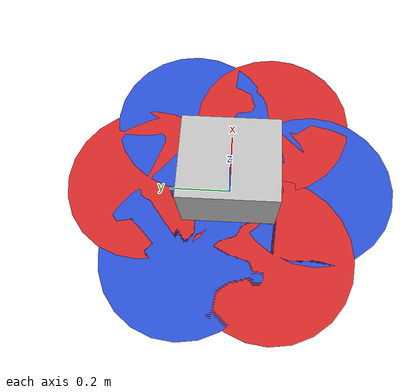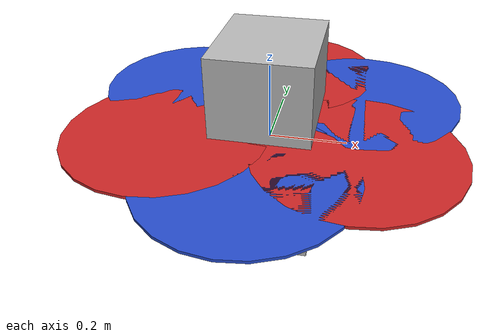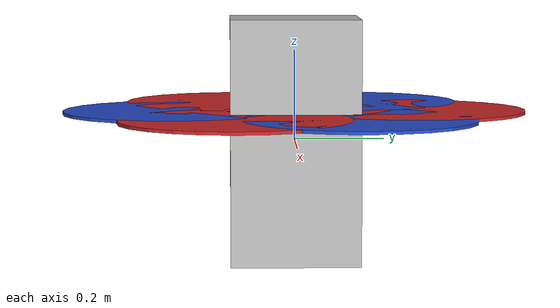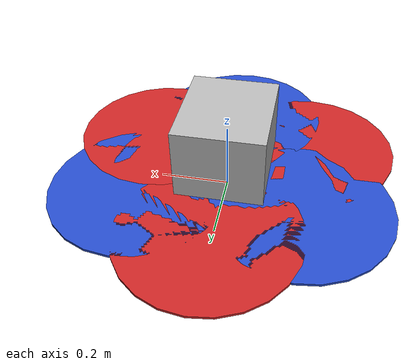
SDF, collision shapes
<?xml version="1.0"?>
<sdf version="1.8">
  <model name="S550">
    <!-- Initial pose -->
    <pose>0 0 0 0 0 0</pose>

    <!-- Body link -->
    <link name="base_link">
      <pose>0 0 0 0 0 0</pose>
      <inertial>
        <!-- Center of mass -->
        <pose>-0.006 0.0 0.0 0 0 0</pose>
        <mass>3.066</mass>
        <inertia>
          <ixx>0.05108461936</ixx>
          <ixy>-0.00002918115</ixy>
          <ixz>0.00004004074</ixz>
          <iyy>0.05056371267</iyy>
          <iyz>0.00122686913</iyz>
          <izz>0.07383113093</izz>
        </inertia>
      </inertial>
			<collision name="base_link_collision">
				<pose>0 0 0 0 0 0</pose>
				<geometry>
					<box>
						<size>0.250 0.28845 0.545</size>
					</box>
				</geometry>
				<surface>
					<contact>
						<ode>
							<kp>1e7</kp>
							<kd>1.0</kd>
							<max_vel>0.01</max_vel>
							<min_depth>0.003</min_depth>
						</ode>
					</contact>
					<friction>
						<ode>
							<mu>1.2</mu>
							<mu2>1.2</mu2>
							<fdir1>0 0 0</fdir1>
							<slip1>0.0</slip1>
							<slip2>0.0</slip2>
						</ode>
					</friction>
				</surface>
			</collision>
			<visual name="base_link_visual">
				<pose>0 0 0 0 0 0</pose>
				<geometry>
					<mesh>
						<scale>1 1 1</scale>
						<uri>package://drone_description/models/S550/meshes/S550.dae</uri>
					</mesh>
				</geometry>
			</visual>
		</link>

    <!-- IMU link (52mm above base_link) -->
    <link name="imu_link">
      <pose relative_to="base_link">0 0 0.052 0 0 0</pose>
      <inertial>
        <mass>0.001</mass>
        <inertia>
          <ixx>1e-9</ixx>
          <ixy>0</ixy>
          <ixz>0</ixz>
          <iyy>1e-9</iyy>
          <iyz>0</iyz>
          <izz>1e-9</izz>
        </inertia>
      </inertial>
      <sensor name="imu_sensor" type="imu">
        <always_on>true</always_on>
        <update_rate>200</update_rate>
        <imu>
          <angular_velocity>
            <x>
              <noise type="gaussian">
                <mean>0.0</mean>
                <stddev>7.727e-4</stddev>
                <bias_mean>0.0</bias_mean>
                <bias_stddev>0.0</bias_stddev>
                <dynamic_bias_stddev>1.5e-4</dynamic_bias_stddev>
                <bias_correlation_time>3000.0</bias_correlation_time>
              </noise>
            </x>
            <y>
              <noise type="gaussian">
                <mean>0.0</mean>
                <stddev>7.727e-4</stddev>
                <bias_mean>0.0</bias_mean>
                <bias_stddev>0.0</bias_stddev>
                <dynamic_bias_stddev>1.5e-4</dynamic_bias_stddev>
                <bias_correlation_time>3000.0</bias_correlation_time>
              </noise>
            </y>
            <z>
              <noise type="gaussian">
                <mean>0.0</mean>
                <stddev>7.727e-4</stddev>
                <bias_mean>0.0</bias_mean>
                <bias_stddev>0.0</bias_stddev>
                <dynamic_bias_stddev>1.5e-4</dynamic_bias_stddev>
                <bias_correlation_time>3000.0</bias_correlation_time>
              </noise>
            </z>
          </angular_velocity>
          <linear_acceleration>
            <x>
              <noise type="gaussian">
                <mean>0.0</mean>
                <stddev>1.008e-2</stddev>
                <bias_mean>0.0</bias_mean>
                <bias_stddev>0.0</bias_stddev>
                <dynamic_bias_stddev>8.0e-3</dynamic_bias_stddev>
                <bias_correlation_time>3000.0</bias_correlation_time>
              </noise>
            </x>
            <y>
              <noise type="gaussian">
                <mean>0.0</mean>
                <stddev>1.008e-2</stddev>
                <bias_mean>0.0</bias_mean>
                <bias_stddev>0.0</bias_stddev>
                <dynamic_bias_stddev>8.0e-3</dynamic_bias_stddev>
                <bias_correlation_time>3000.0</bias_correlation_time>
              </noise>
            </y>
            <z>
              <noise type="gaussian">
                <mean>0.0</mean>
                <stddev>1.086e-2</stddev>
                <bias_mean>0.0</bias_mean>
                <bias_stddev>0.0</bias_stddev>
                <dynamic_bias_stddev>8.0e-3</dynamic_bias_stddev>
                <bias_correlation_time>3000.0</bias_correlation_time>
              </noise>
            </z>
          </linear_acceleration>
        </imu>
        <visualize>false</visualize>
      </sensor>
    </link>

    <joint name="imu_joint" type="fixed">
      <parent>base_link</parent>
      <child>imu_link</child>
    </joint>

    <!-- Camera link -->
    <link name="bottom_screw_frame">
      <pose relative_to="base_link">
        0.046 0 -0.088
        0 0.52359877559 0
      </pose>
      <inertial>
        <pose>0 0 0 0 0 0</pose>
        <mass>1e-10</mass>
        <inertia>
          <ixx>1e-10</ixx>
          <ixy>0</ixy>
          <ixz>0</ixz>
          <iyy>1e-10</iyy>
          <iyz>0</iyz>
          <izz>1e-10</izz>
        </inertia>
      </inertial>
    </link>

    <link name="camera_link">
      <pose relative_to="bottom_screw_frame">
        0 0.0175 0.0125
        0 0 0
      </pose>
      <inertial>
        <pose>0 0 0 0 0 0</pose>
        <mass>1e-10</mass>
        <inertia>
          <ixx>1e-10</ixx>
          <ixy>0</ixy>
          <ixz>0</ixz>
          <iyy>1e-10</iyy>
          <iyz>0</iyz>
          <izz>1e-10</izz>
        </inertia>
      </inertial>
      <collision name="camera_collision">
        <pose>0 0 0
              0 0 0
        </pose>
        <geometry>
          <box>
            <size>0.090 0.025 0.025</size>
          </box>
        </geometry>
      </collision>
      <visual name="camera_visual">
        <pose relative_to="camera_link">
          0.0149 -0.0175 0
          1.57079632679 0 1.57079632679
        </pose>
        <geometry>
          <mesh>
            <scale>1 1 1</scale>
            <uri>package://drone_description/models/S550/meshes/d435.dae</uri>
          </mesh>
        </geometry>
      </visual>
    </link>

    <link name="camera_ir_frame">
      <pose relative_to="camera_link">
        0 0 0
        0 0 0
      </pose>
      <inertial>
        <pose>0 0 0 0 0 0</pose>
        <mass>1e-10</mass>
        <inertia>
          <ixx>1e-10</ixx>
          <ixy>0</ixy>
          <ixz>0</ixz>
          <iyy>1e-10</iyy>
          <iyz>0</iyz>
          <izz>1e-10</izz>
        </inertia>
      </inertial>
    </link>

    <link name="camera_ir_optical_frame">
      <pose relative_to="camera_ir_frame">
        0 0 0
        -1.57079632679 0 -1.57079632679
      </pose>
      <inertial>
        <pose>0 0 0 0 0 0</pose>
        <mass>1e-10</mass>
        <inertia>
          <ixx>1e-10</ixx>
          <ixy>0</ixy>
          <ixz>0</ixz>
          <iyy>1e-10</iyy>
          <iyz>0</iyz>
          <izz>1e-10</izz>
        </inertia>
      </inertial>
      <!-- Left IR Camera -->
      <sensor name="camera_left_ir_sensor" type="camera">
        <pose relative_to="camera_ir_frame">
          0 0 0
          0 0 0
        </pose>
        <topic>camera/infra1/image_rect_raw</topic>
        <always_on>true</always_on>
        <update_rate>30</update_rate>
        <visualize>false</visualize>
        <enable_metrics>false</enable_metrics>
        <camera>
          <horizontal_fov>1.3742478184</horizontal_fov>
          <image>
            <width>640</width>
            <height>480</height>
            <format>L_INT8</format>
          </image>
          <clip>
            <near>0.1</near>
            <far>10</far>
          </clip>
          <noise>
            <type>gaussian</type>
            <mean>0.0</mean>
            <stddev>0.007</stddev>
          </noise>
          <distortion>
            <k1>0.0</k1>
            <k2>0.0</k2>
            <k3>0.0</k3>
            <p1>0.0</p1>
            <p2>0.0</p2>
          </distortion>
        </camera>
      </sensor>
      <!-- Right IR Camera -->
      <sensor name="camera_right_ir_sensor" type="camera">
        <pose relative_to="camera_ir_frame">
          0 -0.050 0
          0 0 0
        </pose>
        <topic>camera/infra2/image_rect_raw</topic>
        <always_on>true</always_on>
        <update_rate>30</update_rate>
        <visualize>false</visualize>
        <enable_metrics>false</enable_metrics>
        <camera>
          <horizontal_fov>1.3742478184</horizontal_fov>
          <image>
            <width>640</width>
            <height>480</height>
            <format>L_INT8</format>
          </image>
          <clip>
            <near>0.1</near>
            <far>10</far>
          </clip>
          <noise>
            <type>gaussian</type>
            <mean>0.0</mean>
            <stddev>0.007</stddev>
          </noise>
          <distortion>
            <k1>0.0</k1>
            <k2>0.0</k2>
            <k3>0.0</k3>
            <p1>0.0</p1>
            <p2>0.0</p2>
          </distortion>
        </camera>
      </sensor>
    </link>

    <link name="camera_depth_frame">
      <pose relative_to="camera_link">
        0.015 0 0
        0 0 0
      </pose>
      <inertial>
        <pose>0 0 0 0 0 0</pose>
        <mass>1e-10</mass>
        <inertia>
          <ixx>1e-10</ixx>
          <ixy>0</ixy>
          <ixz>0</ixz>
          <iyy>1e-10</iyy>
          <iyz>0</iyz>
          <izz>1e-10</izz>
        </inertia>
      </inertial>
    </link>

    <link name="camera_depth_optical_frame">
      <pose relative_to="camera_depth_frame">
        0 0 0
        -1.57079632679 0 -1.57079632679
      </pose>
      <inertial>
        <pose>0 0 0 0 0 0</pose>
        <mass>1e-10</mass>
        <inertia>
          <ixx>1e-10</ixx>
          <ixy>0</ixy>
          <ixz>0</ixz>
          <iyy>1e-10</iyy>
          <iyz>0</iyz>
          <izz>1e-10</izz>
        </inertia>
      </inertial>
    </link>

    <!-- Camera joint -->
    <joint name="bottom_screw_frame_joint" type="fixed">
      <parent>base_link</parent>
      <child>bottom_screw_frame</child>
    </joint>

    <joint name="camera_link_joint" type="fixed">
      <parent>bottom_screw_frame</parent>
      <child>camera_link</child>
    </joint>

    <joint name="camera_ir_frame_joint" type="fixed">
      <parent>camera_link</parent>
      <child>camera_ir_frame</child>
    </joint>

    <joint name="camera_ir_optical_frame_joint" type="fixed">
      <parent>camera_ir_frame</parent>
      <child>camera_ir_optical_frame</child>
    </joint>

    <joint name="camera_depth_frame_joint" type="fixed">
      <parent>camera_link</parent>
      <child>camera_depth_frame</child>
    </joint>

    <joint name="camera_depth_optical_frame_joint" type="fixed">
      <parent>camera_depth_frame</parent>
      <child>camera_depth_optical_frame</child>
    </joint>

    <!-- Prop links -->
    <!-- 1. Front left prop link -->
		<link name="S550/front_left">
			<pose>0.2295 0.1325 0.062 0 -0 0</pose>
			<inertial>
			<pose>0 0 0 0 0 0</pose>
			<mass>1e-10</mass>
			<inertia>
				<ixx>2.96e-07</ixx>
				<ixy>0</ixy>
				<ixz>0</ixz>
				<iyy>5.74e-05</iyy>
				<iyz>0</iyz>
				<izz>5.74e-05</izz>
			</inertia>
				</inertial>
				<collision name="S550/front_left_collision">
				  <pose>0 0 0 0 0 0</pose>
				  <geometry>
					  <cylinder>
						  <length>0.007</length>
						  <radius>0.254</radius>
					  </cylinder>
          </geometry>
        </collision>
        <visual name="S550/front_left_visual">
          <pose>0 0 0 0 0 0</pose>
          <geometry>
            <mesh>
              <scale>1 1 1</scale>
              <uri>package://drone_description/models/S550/meshes/apc_10x4_5_ccw.dae</uri>
            </mesh>
          </geometry>
          <material>
            <script>
            <name>Gazebo/Blue</name>
              <uri>file://media/materials/scripts/gazebo.material</uri>
            </script>
          </material>
        </visual>
        <gravity>1</gravity>
      </link>

    <!-- 2. Left prop link -->
		<link name="S550/left">
			<pose>0 0.2650 0.062 0 0 0</pose>
			<inertial>
			<pose>0 0 0 0 0 0</pose>
			<mass>1e-10</mass>
			<inertia>
				<ixx>2.96e-07</ixx>
				<ixy>0</ixy>
				<ixz>0</ixz>
				<iyy>5.72e-5</iyy>
				<iyz>0</iyz>
				<izz>5.74e-05</izz>
			</inertia>
				</inertial>
				<collision name="S550/left_collision">
				  <pose>0 0 0 0 0 0</pose>
				  <geometry>
					  <cylinder>
						  <length>0.007</length>
						  <radius>0.254</radius>
					  </cylinder>
          </geometry>
        </collision>
        <visual name="S550/left_visual">
          <pose>0 0 0 0 0 0</pose>
          <geometry>
            <mesh>
              <scale>1 1 1</scale>
              <uri>package://drone_description/models/S550/meshes/apc_10x4_5_cw.dae</uri>
            </mesh>
          </geometry>
          <material>
            <script>
            <name>Gazebo/Red</name>
              <uri>file://media/materials/scripts/gazebo.material</uri>
            </script>
          </material>
        </visual>
        <gravity>1</gravity>
      </link>

    <!-- 3. Back left prop link -->
		<link name="S550/back_left">
			<pose>-0.2295 0.1325 0.062 0 0 0</pose>
			<inertial>
			<pose>0 0 0 0 0 0</pose>
			<mass>1e-10</mass>
			<inertia>
				<ixx>2.96e-07</ixx>
				<ixy>0</ixy>
				<ixz>0</ixz>
				<iyy>5.72e-5</iyy>
				<iyz>0</iyz>
				<izz>5.74e-05</izz>
			</inertia>
				</inertial>
				<collision name="S550/back_left_collision">
				  <pose>0 0 0 0 0 0</pose>
				  <geometry>
					  <cylinder>
						  <length>0.007</length>
						  <radius>0.254</radius>
					  </cylinder>
          </geometry>
        </collision>
        <visual name="S550/back_left_visual">
          <pose>0 0 0 0 0 0</pose>
          <geometry>
            <mesh>
              <scale>1 1 1</scale>
              <uri>package://drone_description/models/S550/meshes/apc_10x4_5_ccw.dae</uri>
            </mesh>
          </geometry>
          <material>
            <script>
            <name>Gazebo/Blue</name>
              <uri>file://media/materials/scripts/gazebo.material</uri>
            </script>
          </material>
        </visual>
        <gravity>1</gravity>
      </link>

    <!-- 4. Back right prop link -->
		<link name="S550/back_right">
			<pose>-0.2295 -0.1325 0.062 0 0 0</pose>
			<inertial>
			<pose>0 0 0 0 0 0</pose>
			<mass>1e-10</mass>
			<inertia>
				<ixx>2.96e-07</ixx>
				<ixy>0</ixy>
				<ixz>0</ixz>
				<iyy>5.72e-5</iyy>
				<iyz>0</iyz>
				<izz>5.74e-05</izz>
			</inertia>
				</inertial>
				<collision name="S550/back_right_collision">
				  <pose>0 0 0 0 0 0</pose>
				  <geometry>
					  <cylinder>
						  <length>0.007</length>
						  <radius>0.254</radius>
					  </cylinder>
          </geometry>
        </collision>
        <visual name="S550/back_right_visual">
          <pose>0 0 0 0 0 0</pose>
          <geometry>
            <mesh>
              <scale>1 1 1</scale>
              <uri>package://drone_description/models/S550/meshes/apc_10x4_5_cw.dae</uri>
            </mesh>
          </geometry>
          <material>
            <script>
            <name>Gazebo/Red</name>
              <uri>file://media/materials/scripts/gazebo.material</uri>
            </script>
          </material>
        </visual>
        <gravity>1</gravity>
      </link>

    <!-- 5. right prop link -->
		<link name="S550/right">
			<pose>0 -0.2650 0.062 0 0 0</pose>
			<inertial>
			<pose>0 0 0 0 0 0</pose>
			<mass>1e-10</mass>
			<inertia>
				<ixx>2.96e-07</ixx>
				<ixy>0</ixy>
				<ixz>0</ixz>
				<iyy>5.72e-5</iyy>
				<iyz>0</iyz>
				<izz>5.74e-05</izz>
			</inertia>
				</inertial>
				<collision name="S550/right_collision">
				  <pose>0 0 0 0 0 0</pose>
				  <geometry>
					  <cylinder>
						  <length>0.007</length>
						  <radius>0.254</radius>
					  </cylinder>
          </geometry>
        </collision>
        <visual name="S550/right_visual">
          <pose>0 0 0 0 0 0</pose>
          <geometry>
            <mesh>
              <scale>1 1 1</scale>
              <uri>package://drone_description/models/S550/meshes/apc_10x4_5_ccw.dae</uri>
            </mesh>
          </geometry>
          <material>
            <script>
            <name>Gazebo/Blue</name>
              <uri>file://media/materials/scripts/gazebo.material</uri>
            </script>
          </material>
        </visual>
        <gravity>1</gravity>
      </link>

    <!-- 6. Front right prop link -->
		<link name="S550/front_right">
			<pose>0.2295 -0.1325 0.062 0 0 0</pose>
			<inertial>
			<pose>0 0 0 0 0 0</pose>
			<mass>1e-10</mass>
			<inertia>
				<ixx>2.96e-07</ixx>
				<ixy>0</ixy>
				<ixz>0</ixz>
				<iyy>5.72e-5</iyy>
				<iyz>0</iyz>
				<izz>5.74e-05</izz>
			</inertia>
				</inertial>
				<collision name="S550/front_right_collision">
				  <pose>0 0 0 0 0 0</pose>
				  <geometry>
					  <cylinder>
						  <length>0.007</length>
						  <radius>0.254</radius>
					  </cylinder>
          </geometry>
        </collision>
        <visual name="S550/front_right_visual">
          <pose>0 0 0 0 0 0</pose>
          <geometry>
            <mesh>
              <scale>1 1 1</scale>
              <uri>package://drone_description/models/S550/meshes/apc_10x4_5_cw.dae</uri>
            </mesh>
          </geometry>
          <material>
            <script>
            <name>Gazebo/Red</name>
              <uri>file://media/materials/scripts/gazebo.material</uri>
            </script>
          </material>
        </visual>
        <gravity>1</gravity>
      </link>

      <!-- Prop Joints -->
      <!-- 1. Front left joint -->
      <joint name="S550/front_left_joint" type="revolute">
        <child>S550/front_left</child>
        <parent>base_link</parent>
        <axis>
          <xyz>0 0 1</xyz>
          <limit>
            <lower>-1e+16</lower>
            <upper>1e+16</upper>
          </limit>
          <dynamics>
            <spring_reference>0</spring_reference>
            <spring_stiffness>0</spring_stiffness>
          </dynamics>
          <use_parent_model_frame>1</use_parent_model_frame>
        </axis>
      </joint>

      <!-- 2. Left joint -->
      <joint name="S550/left_joint" type="revolute">
        <child>S550/left</child>
        <parent>base_link</parent>
        <axis>
          <xyz>0 0 1</xyz>
          <limit>
            <lower>-1e+16</lower>
            <upper>1e+16</upper>
          </limit>
          <dynamics>
            <spring_reference>0</spring_reference>
            <spring_stiffness>0</spring_stiffness>
          </dynamics>
          <use_parent_model_frame>1</use_parent_model_frame>
        </axis>
      </joint>

      <!-- 3. Back left joint -->
      <joint name="S550/back_left_joint" type="revolute">
        <child>S550/back_left</child>
        <parent>base_link</parent>
        <axis>
          <xyz>0 0 1</xyz>
          <limit>
            <lower>-1e+16</lower>
            <upper>1e+16</upper>
          </limit>
          <dynamics>
            <spring_reference>0</spring_reference>
            <spring_stiffness>0</spring_stiffness>
          </dynamics>
          <use_parent_model_frame>1</use_parent_model_frame>
        </axis>
      </joint>

      <!-- 4. Back right joint -->
      <joint name="S550/back_right_joint" type="revolute">
        <child>S550/back_right</child>
        <parent>base_link</parent>
        <axis>
          <xyz>0 0 1</xyz>
          <limit>
            <lower>-1e+16</lower>
            <upper>1e+16</upper>
          </limit>
          <dynamics>
            <spring_reference>0</spring_reference>
            <spring_stiffness>0</spring_stiffness>
          </dynamics>
          <use_parent_model_frame>1</use_parent_model_frame>
        </axis>
      </joint>

      <!-- 5. right joint -->
      <joint name="S550/right_joint" type="revolute">
        <child>S550/right</child>
        <parent>base_link</parent>
        <axis>
          <xyz>0 0 1</xyz>
          <limit>
            <lower>-1e+16</lower>
            <upper>1e+16</upper>
          </limit>
          <dynamics>
            <spring_reference>0</spring_reference>
            <spring_stiffness>0</spring_stiffness>
          </dynamics>
          <use_parent_model_frame>1</use_parent_model_frame>
        </axis>
      </joint>

      <!-- 6. Front right joint -->
      <joint name="S550/front_right_joint" type="revolute">
        <child>S550/front_right</child>
        <parent>base_link</parent>
        <axis>
          <xyz>0 0 1</xyz>
          <limit>
            <lower>-1e+16</lower>
            <upper>1e+16</upper>
          </limit>
          <dynamics>
            <spring_reference>0</spring_reference>
            <spring_stiffness>0</spring_stiffness>
          </dynamics>
          <use_parent_model_frame>1</use_parent_model_frame>
        </axis>
      </joint>

      <!-- Multicopter plugins -->
      <!-- 1. Front left plugin -->
      <plugin
      filename="ignition-gazebo-multicopter-motor-model-system"
      name="gz::sim::systems::MulticopterMotorModel">
        <robotNamespace>S550</robotNamespace>
        <jointName>S550/front_left_joint</jointName>
        <linkName>S550/front_left</linkName>
        <turningDirection>ccw</turningDirection>
        <timeConstantUp>1e-10</timeConstantUp>
        <timeConstantDown>1e-10</timeConstantDown>
        <maxRotVelocity>838</maxRotVelocity>
        <motorConstant>1.20142e-05</motorConstant>
        <momentConstant>0.01569</momentConstant>
        <commandSubTopic>gazebo/command/motor_speed</commandSubTopic>
        <motorNumber>0</motorNumber>
        <rotorDragCoefficient>0.0</rotorDragCoefficient>
        <rollingMomentCoefficient>0.0</rollingMomentCoefficient>
        <rotorVelocitySlowdownSim>10</rotorVelocitySlowdownSim>
        <motorType>velocity</motorType>
      </plugin>

      <!-- 2. Left plugin -->
      <plugin
      filename="ignition-gazebo-multicopter-motor-model-system"
      name="gz::sim::systems::MulticopterMotorModel">
        <robotNamespace>S550</robotNamespace>
        <jointName>S550/left_joint</jointName>
        <linkName>S550/left</linkName>
        <turningDirection>cw</turningDirection>
        <timeConstantUp>1e-10</timeConstantUp>
        <timeConstantDown>1e-10</timeConstantDown>
        <maxRotVelocity>838</maxRotVelocity>
        <motorConstant>1.20142e-05</motorConstant>
        <momentConstant>0.01569</momentConstant>
        <commandSubTopic>gazebo/command/motor_speed</commandSubTopic>
        <motorNumber>1</motorNumber>
        <rotorDragCoefficient>0.0</rotorDragCoefficient>
        <rollingMomentCoefficient>0.0</rollingMomentCoefficient>
        <rotorVelocitySlowdownSim>10</rotorVelocitySlowdownSim>
        <motorType>velocity</motorType>
      </plugin>

      <!-- 3. Back Left plugin -->
      <plugin
      filename="ignition-gazebo-multicopter-motor-model-system"
      name="gz::sim::systems::MulticopterMotorModel">
        <robotNamespace>S550</robotNamespace>
        <jointName>S550/back_left_joint</jointName>
        <linkName>S550/back_left</linkName>
        <turningDirection>ccw</turningDirection>
        <timeConstantUp>1e-10</timeConstantUp>
        <timeConstantDown>1e-10</timeConstantDown>
        <maxRotVelocity>838</maxRotVelocity>
        <motorConstant>1.20142e-05</motorConstant>
        <momentConstant>0.01569</momentConstant>
        <commandSubTopic>gazebo/command/motor_speed</commandSubTopic>
        <motorNumber>2</motorNumber>
        <rotorDragCoefficient>0.0</rotorDragCoefficient>
        <rollingMomentCoefficient>0.0</rollingMomentCoefficient>
        <rotorVelocitySlowdownSim>10</rotorVelocitySlowdownSim>
        <motorType>velocity</motorType>
      </plugin>

      <!-- 4. Back right plugin -->
      <plugin
      filename="ignition-gazebo-multicopter-motor-model-system"
      name="gz::sim::systems::MulticopterMotorModel">
        <robotNamespace>S550</robotNamespace>
        <jointName>S550/back_right_joint</jointName>
        <linkName>S550/back_right</linkName>
        <turningDirection>cw</turningDirection>
        <timeConstantUp>1e-10</timeConstantUp>
        <timeConstantDown>1e-10</timeConstantDown>
        <maxRotVelocity>838</maxRotVelocity>
        <motorConstant>1.20142e-05</motorConstant>
        <momentConstant>0.01569</momentConstant>
        <commandSubTopic>gazebo/command/motor_speed</commandSubTopic>
        <motorNumber>3</motorNumber>
        <rotorDragCoefficient>0.0</rotorDragCoefficient>
        <rollingMomentCoefficient>0.0</rollingMomentCoefficient>
        <rotorVelocitySlowdownSim>10</rotorVelocitySlowdownSim>
        <motorType>velocity</motorType>
      </plugin>

      <!-- 5. Right plugin -->
      <plugin
      filename="ignition-gazebo-multicopter-motor-model-system"
      name="gz::sim::systems::MulticopterMotorModel">
        <robotNamespace>S550</robotNamespace>
        <jointName>S550/right_joint</jointName>
        <linkName>S550/right</linkName>
        <turningDirection>ccw</turningDirection>
        <timeConstantUp>1e-10</timeConstantUp>
        <timeConstantDown>1e-10</timeConstantDown>
        <maxRotVelocity>838</maxRotVelocity>
        <motorConstant>1.20142e-05</motorConstant>
        <momentConstant>0.01569</momentConstant>
        <commandSubTopic>gazebo/command/motor_speed</commandSubTopic>
        <motorNumber>4</motorNumber>
        <rotorDragCoefficient>0.0</rotorDragCoefficient>
        <rollingMomentCoefficient>0.0</rollingMomentCoefficient>
        <rotorVelocitySlowdownSim>10</rotorVelocitySlowdownSim>
        <motorType>velocity</motorType>
      </plugin>

      <!-- 6. Front right plugin -->
      <plugin
      filename="ignition-gazebo-multicopter-motor-model-system"
      name="gz::sim::systems::MulticopterMotorModel">
        <robotNamespace>S550</robotNamespace>
        <jointName>S550/front_right_joint</jointName>
        <linkName>S550/front_right</linkName>
        <turningDirection>cw</turningDirection>
        <timeConstantUp>1e-10</timeConstantUp>
        <timeConstantDown>1e-10</timeConstantDown>
        <maxRotVelocity>838</maxRotVelocity>
        <motorConstant>1.20142e-05</motorConstant>
        <momentConstant>0.01569</momentConstant>
        <commandSubTopic>gazebo/command/motor_speed</commandSubTopic>
        <motorNumber>5</motorNumber>
        <rotorDragCoefficient>0.0</rotorDragCoefficient>
        <rollingMomentCoefficient>0.0</rollingMomentCoefficient>
        <rotorVelocitySlowdownSim>10</rotorVelocitySlowdownSim>
        <motorType>velocity</motorType>
      </plugin>

      <!-- Odom publisher -->
      <plugin
      filename="ignition-gazebo-odometry-publisher-system"
      name="ignition::gazebo::systems::OdometryPublisher">
        <odom_frame>S550/odom</odom_frame>
        <robot_base_frame>imu_link</robot_base_frame>
        <dimensions>3</dimensions>
        <xyz_offset>0 0 0</xyz_offset>
        <rpy_offset>0 0 0</rpy_offset>
        <odom_topic>S550/ground_truth/odom</odom_topic>
        <tf_topic>S550/pose</tf_topic>
        <odom_publish_frequency>100.0</odom_publish_frequency>
        <gaussian_noise>0.002</gaussian_noise>
      </plugin>

      <plugin
        filename="ignition-gazebo-joint-state-publisher-system"
        name="ignition::gazebo::systems::JointStatePublisher">
      </plugin>

      <!-- Angular damping: tau = -b * omega (body frame) -->
      <plugin
        filename="AngularDamping"
        name="angular_damping::AngularDamping">
        <link_name>base_link</link_name>
        <b_x>0.3</b_x>
        <b_y>0.3</b_y>
        <b_z>0.3</b_z>
      </plugin>

  </model>
</sdf>
